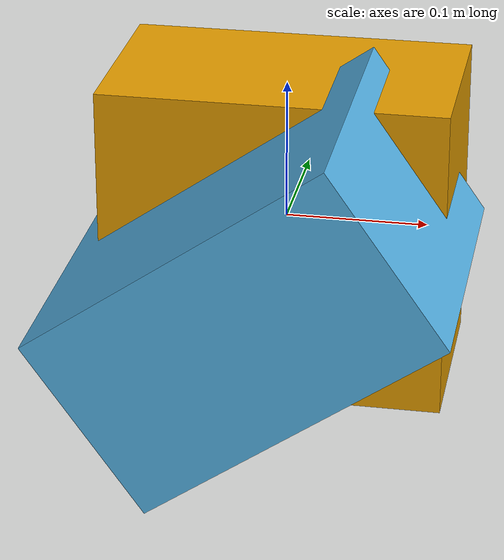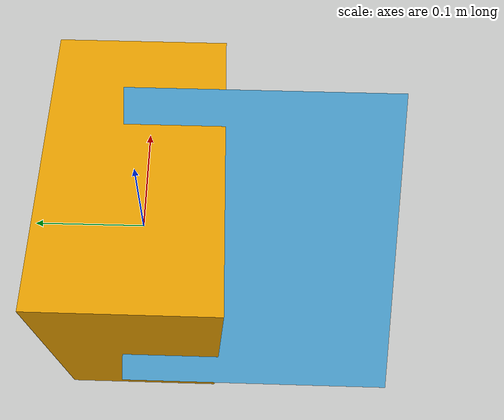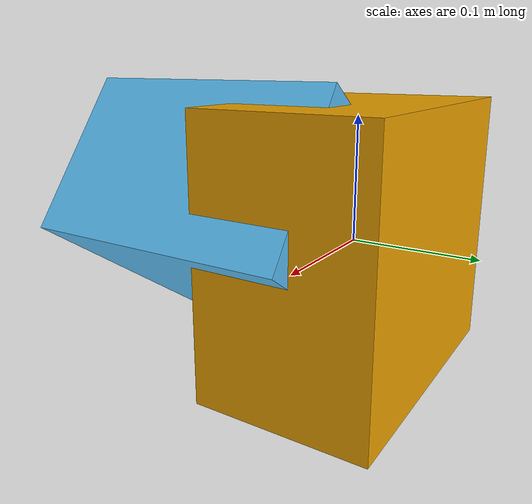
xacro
<?xml version="1.0"?>
<robot xmlns:xacro="http://www.ros.org/wiki/xacro" name="test_state_publisher_robot">

  <link name="base_link">
    <visual name="Cube">
      <origin xyz="0 0 0" rpy="0 0 0"/>
      <geometry>
        <box size="0.24 0.14 0.22"/>
      </geometry>
    </visual>
  </link>

  <link name="link_1">
    <visual name="Cube">
      <origin xyz="0 0 0" rpy="0 0 0"/>
      <geometry>
        <box size="0.24 0.14 0.22"/>
      </geometry>
    </visual>
  </link>

  <joint name="joint_1" type="revolute">
    <origin xyz="0 -0.1 0" rpy="1.5708 1.5708 0"/>
    <parent link="base_link"/>
    <child link="link_1"/>
    <axis xyz="0 0 1.0"/>
    <limit lower="-1.39626" upper="-0.5236" effort="35.0" velocity="26.0"/>
  </joint>

  <link name="imu">
    <inertial>
      <origin xyz="0 0 0" rpy="0 0 0"/>
      <mass value="0.001"/>
      <inertia ixx="0.001" ixy="0" ixz="0" iyy="0.001" iyz="0" izz="0.001"/>
    </inertial>
  </link>

  <joint name="imu" type="fixed">
    <origin xyz="0 0 0" rpy="1.5708 0 1.5708"/>
    <parent link="base_link"/>
    <child link="imu"/>
  </joint>

  <ros2_control name="pi3hat_hardware_interface" type="system">
      <hardware>
          <plugin>pi3hat_hardware_interface/Pi3HatHardwareInterface</plugin>
          <param name="imu_mounting_deg.yaw">0</param>
          <param name="imu_mounting_deg.pitch">0</param>
          <param name="imu_mounting_deg.roll">0</param>
      </hardware>

      <joint name="joint_1">
          <param name="can_protocol">moteus</param>

          <param name="can_id">1</param>
          <param name="can_channel">2</param>

          <param name="axis_direction">-1</param>
          <param name="position_offset">0.0</param>
          <param name="gear_ratio">1.0</param>
          <param name="torque_constant">0.09729</param>

          <param name="effort_max">1.0</param>
          <param name="position_min">-1.0</param>
          <param name="position_max">1.0</param>
          <param name="velocity_max">1.0</param>

          <param name="kp_max">1.0</param>
          <param name="kd_max">1.0</param>
          <param name="ki_max">1.0</param>

          <param name="soft_start_duration_ms">0</param>

          <command_interface name="position"/>
          <command_interface name="velocity"/>
          <command_interface name="effort"/>
          <command_interface name="proportional"/>
          <command_interface name="derivative"/>
          <command_interface name="integral"/>

          <state_interface name="position"/>
          <state_interface name="velocity"/>
          <state_interface name="effort"/>

      </joint>

      <sensor name="imu_sensor">
          <state_interface name="orientation.x"/>
          <state_interface name="orientation.y"/>
          <state_interface name="orientation.z"/>
          <state_interface name="orientation.w"/>
          <state_interface name="angular_velocity.x"/>
          <state_interface name="angular_velocity.y"/>
          <state_interface name="angular_velocity.z"/>
          <state_interface name="linear_acceleration.x"/>
          <state_interface name="linear_acceleration.y"/>
          <state_interface name="linear_acceleration.z"/>
      </sensor>
  </ros2_control>

</robot>
